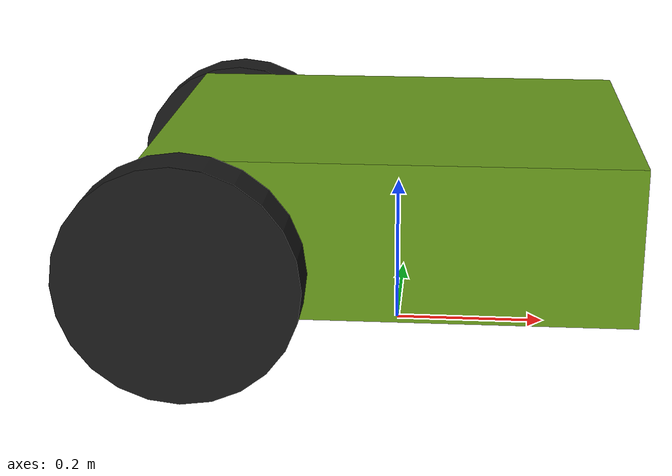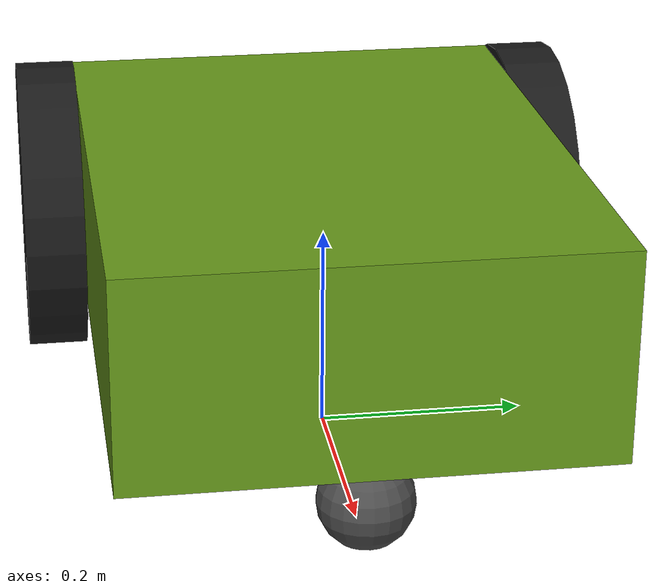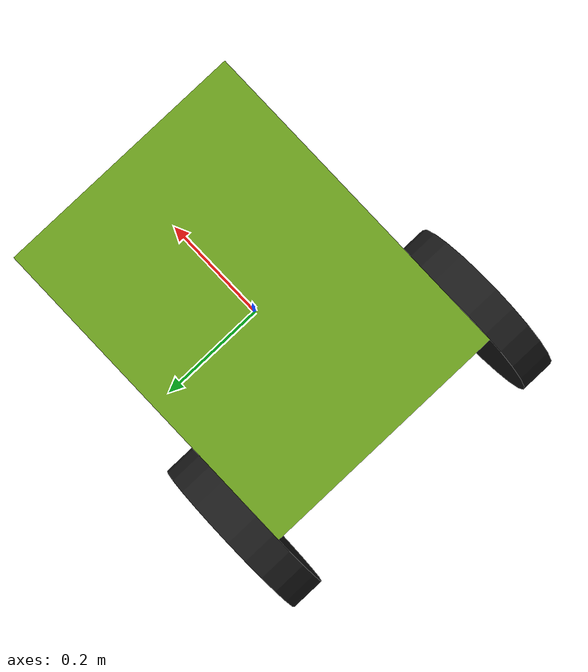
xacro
<?xml version="1.0"?>
<robot xmlns:xacro="http://www.ros.org/wiki/xacro">

  <xacro:include filename="inertial_macros.xacro"/>

  <!-- Robot dimensions and parameters -->
  <xacro:property name="body_length" value="0.6"/>
  <xacro:property name="body_width" value="0.45"/>
  <xacro:property name="body_height" value="0.2"/>
  <xacro:property name="ground_clearance" value="0.09"/>

  <xacro:property name="wheel_radius" value="0.15"/>
  <xacro:property name="wheel_width" value="0.06"/>
  <xacro:property name="wheel_separation" value="0.51"/> <!-- Distance between wheel centers -->

  <xacro:property name="front_wheel_radius" value="0.045"/>
  <xacro:property name="rear_wheel_offset" value="0.05"/> <!-- Distance from rear wall to wheel center -->
  <xacro:property name="front_wheel_offset" value="0.05"/> <!-- Distance from front wall to wheel center -->

  <!-- Base link at center -->
  <link name="base_link">
  </link>

  <!-- Chassis link -->
  <joint name="chassis_joint" type="fixed">
    <parent link="base_link"/>
    <child link="chassis"/>
    <origin xyz="0 0 ${ground_clearance + body_height/2}"/>
  </joint>

  <link name="chassis">
    <visual>
      <origin xyz="0 0 0"/>
      <geometry>
        <box size="${body_length} ${body_width} ${body_height}"/>
      </geometry>
      <material name="chassis_material">
        <color rgba="0.4 0.6 0.1 1.0"/>
      </material>
    </visual>
    <collision>
      <origin xyz="0 0 0"/>
      <geometry>
        <box size="${body_length} ${body_width} ${body_height}"/>
      </geometry>
    </collision>
    <xacro:inertial_box mass="15.0" x="${body_length}" y="${body_width}" z="${body_height}"/>
  </link>

  <!-- Left wheel link -->
  <joint name="left_wheel_joint" type="continuous">
    <parent link="base_link"/>
    <child link="left_wheel"/>
    <origin xyz="-${body_length/2 - rear_wheel_offset} ${wheel_separation/2} ${wheel_radius}" rpy="-${pi/2} 0 0"/>
    <axis xyz="0 0 1"/>
  </joint>

  <link name="left_wheel">
    <visual>
      <geometry>
        <cylinder radius="${wheel_radius}" length="${wheel_width}"/>
      </geometry>
      <material name="wheel_material">
        <color rgba="0.1 0.1 0.1 1.0"/>
      </material>
    </visual>
    <collision>
      <geometry>
        <cylinder radius="${wheel_radius}" length="${wheel_width}"/>
      </geometry>
    </collision>
    <xacro:inertial_cylinder mass="2.0" length="${wheel_width}" radius="${wheel_radius}"/>
  </link>

  <!-- Right wheel link -->
  <joint name="right_wheel_joint" type="continuous">
    <parent link="base_link"/>
    <child link="right_wheel"/>
    <origin xyz="-${body_length/2 - rear_wheel_offset} -${wheel_separation/2} ${wheel_radius}" rpy="${pi/2} 0 0"/>
    <axis xyz="0 0 -1"/>
  </joint>

  <link name="right_wheel">
    <visual>
      <geometry>
        <cylinder radius="${wheel_radius}" length="${wheel_width}"/>
      </geometry>
      <material name="wheel_material">
        <color rgba="0.1 0.1 0.1 1.0"/>
      </material>
    </visual>
    <collision>
      <geometry>
        <cylinder radius="${wheel_radius}" length="${wheel_width}"/>
      </geometry>
    </collision>
    <xacro:inertial_cylinder mass="2.0" length="${wheel_width}" radius="${wheel_radius}"/>
  </link>

  <!-- Front wheel link (caster wheel) -->
  <joint name="front_wheel_joint" type="fixed">
    <parent link="base_link"/>
    <child link="front_wheel"/>
    <origin xyz="${body_length/2 - front_wheel_offset} 0 ${front_wheel_radius}"/>
  </joint>

  <link name="front_wheel">
    <visual>
      <geometry>
        <sphere radius="${front_wheel_radius}"/>
      </geometry>
      <material name="wheel_material">
        <color rgba="0.3 0.3 0.3 1.0"/>
      </material>
    </visual>
    <collision>
      <geometry>
        <sphere radius="${front_wheel_radius}"/>
      </geometry>
    </collision>
    <xacro:inertial_sphere mass="0.5" radius="${front_wheel_radius}"/>
  </link>

  <!-- Gazebo Parameters -->
  <gazebo reference="chassis">
    <mu1>1.0</mu1>
    <mu2>1.0</mu2>
  </gazebo>

  <gazebo reference="right_wheel">
    <mu1>1.0</mu1>
    <mu2>1.0</mu2>
  </gazebo>

  <gazebo reference="left_wheel">
    <mu1>1.0</mu1>
    <mu2>1.0</mu2>
  </gazebo>

  <gazebo reference="front_wheel">
    <mu1>0.1</mu1>
    <mu2>0.1</mu2>
  </gazebo>

</robot>

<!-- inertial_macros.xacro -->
<robot xmlns:xacro="http://www.ros.org/wiki/xacro">

  <!-- Inertial macros -->
  <xacro:macro name="inertial_box" params="mass x y z">
    <inertial>
      <origin xyz="0 0 0" rpy="0 0 0"/>
      <mass value="${mass}"/>
      <inertia ixx="${mass/12.0 * (y*y + z*z)}" ixy="0.0" ixz="0.0"
               iyy="${mass/12.0 * (x*x + z*z)}" iyz="0.0"
               izz="${mass/12.0 * (x*x + y*y)}"/>
    </inertial>
  </xacro:macro>

  <xacro:macro name="inertial_cylinder" params="mass length radius">
    <inertial>
      <origin xyz="0 0 0" rpy="0 0 0"/>
      <mass value="${mass}"/>
      <inertia ixx="${mass/12.0 * (3*radius*radius + length*length)}" ixy="0.0" ixz="0.0"
               iyy="${mass/12.0 * (3*radius*radius + length*length)}" iyz="0.0"
               izz="${mass/2.0 * radius*radius}"/>
    </inertial>
  </xacro:macro>

  <xacro:macro name="inertial_sphere" params="mass radius">
    <inertial>
      <origin xyz="0 0 0" rpy="0 0 0"/>
      <mass value="${mass}"/>
      <inertia ixx="${2*mass*radius*radius/5}" ixy="0.0" ixz="0.0"
               iyy="${2*mass*radius*radius/5}" iyz="0.0"
               izz="${2*mass*radius*radius/5}"/>
    </inertial>
  </xacro:macro>
</robot>
